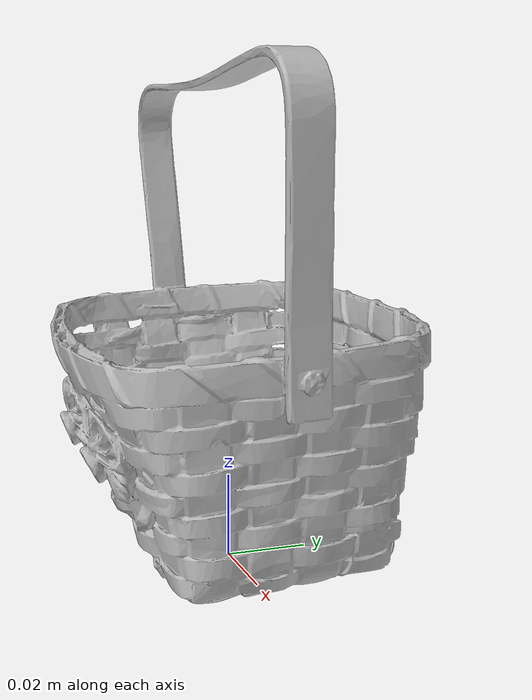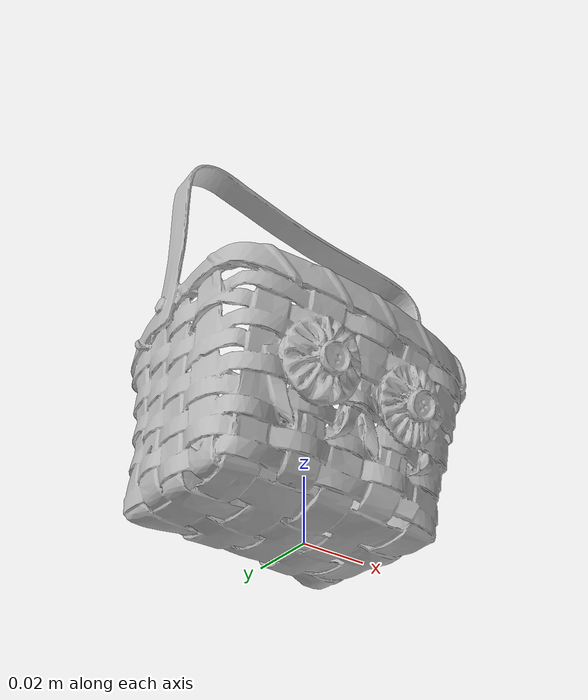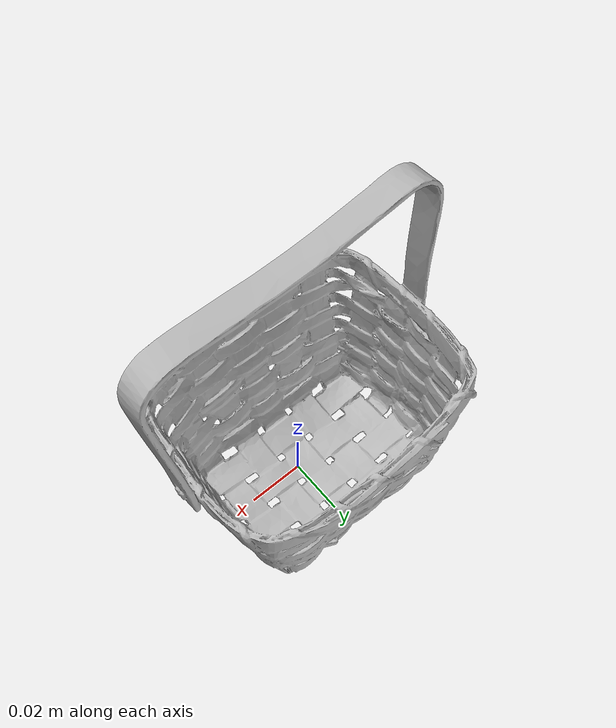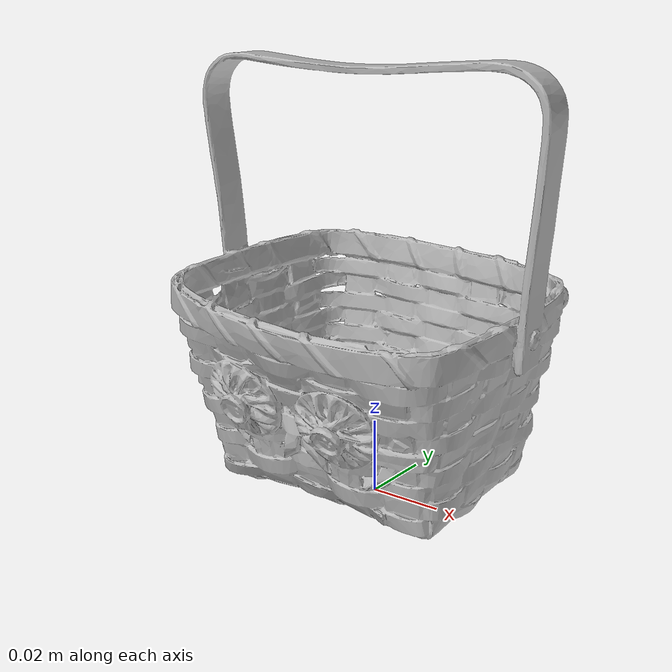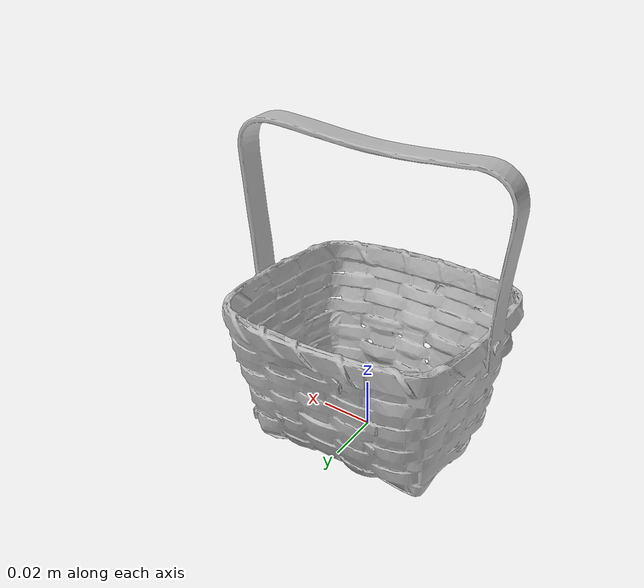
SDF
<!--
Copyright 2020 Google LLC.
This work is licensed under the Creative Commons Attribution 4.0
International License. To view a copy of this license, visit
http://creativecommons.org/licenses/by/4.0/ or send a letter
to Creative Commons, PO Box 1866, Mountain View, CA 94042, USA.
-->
<?xml version="1.0" ?>
<sdf version="1.6">
  <model name="RJ_Rabbit_Easter_Basket_Blue">
    <link name="link_0">
      <visual name="visual">
        <geometry>
          <mesh>
            <scale>0.5 0.5 0.5</scale>
            <uri>meshes/model.obj</uri>
          </mesh>
        </geometry>
      </visual>
      <collision name="collision_0">
        <geometry>
          <mesh>
            <scale>0.5 0.5 0.5</scale>
            <uri>meshes/model.obj</uri>
          </mesh>
        </geometry>
      </collision>
    </link>
  </model>
</sdf>
